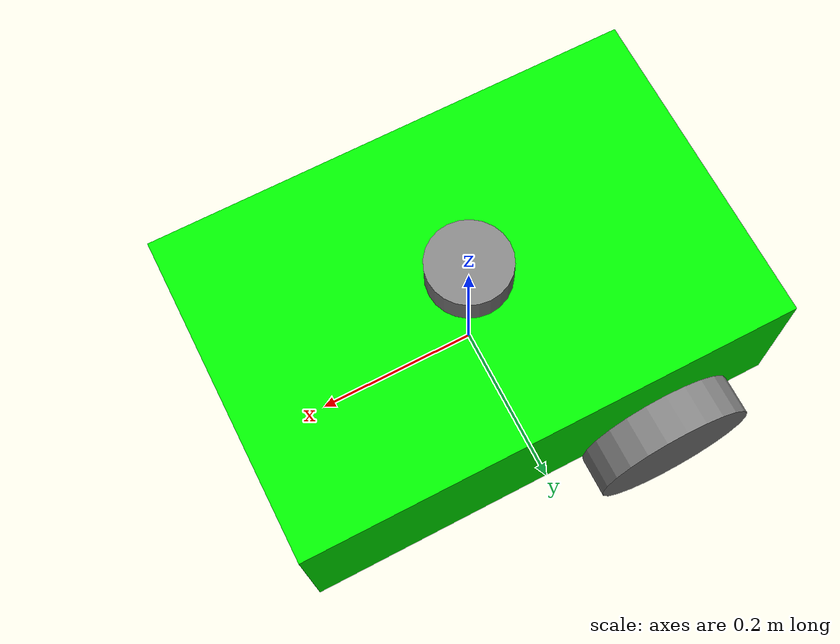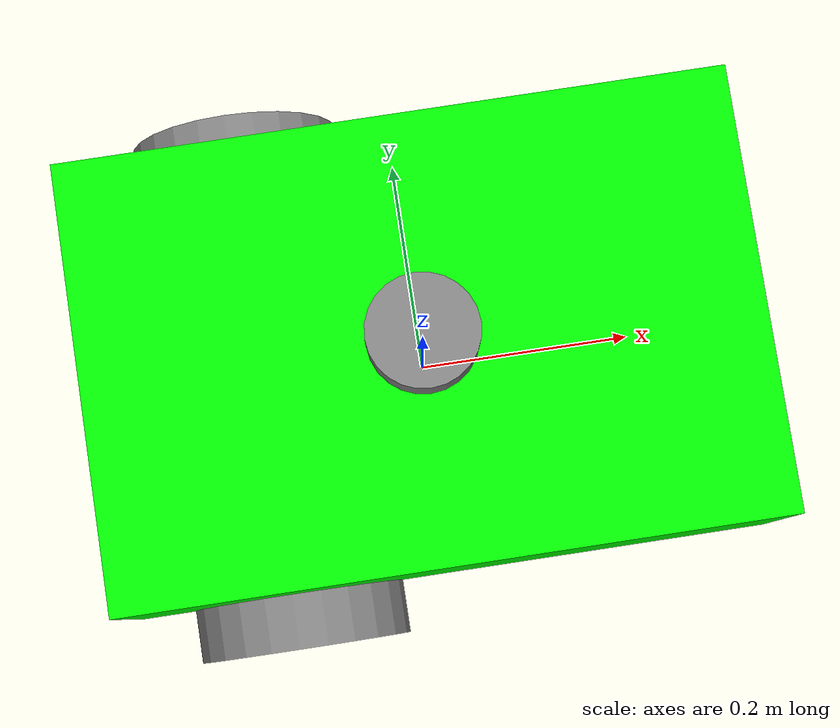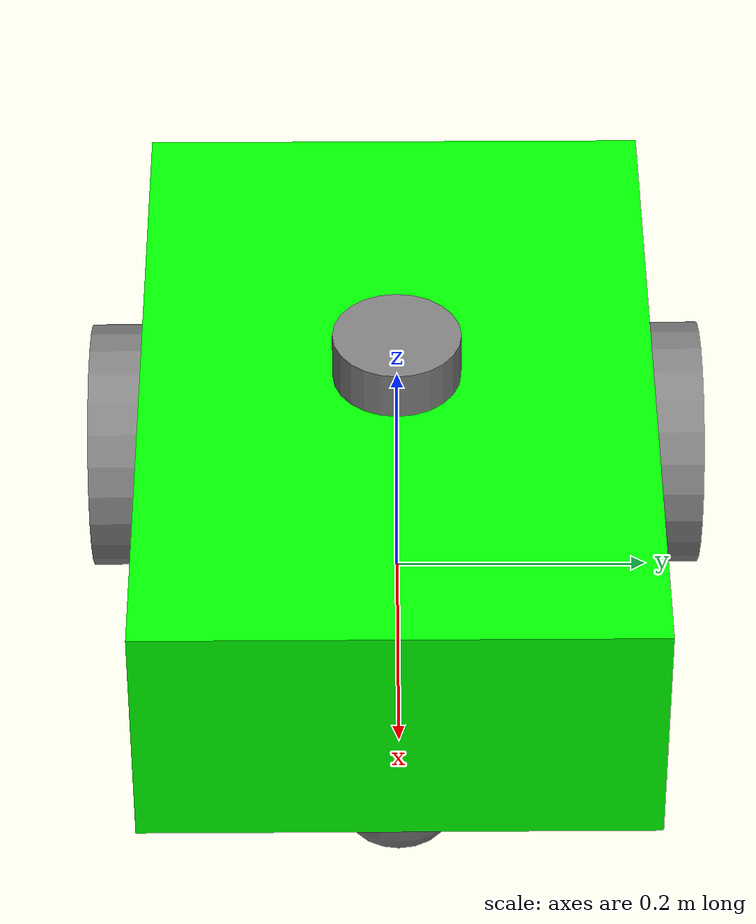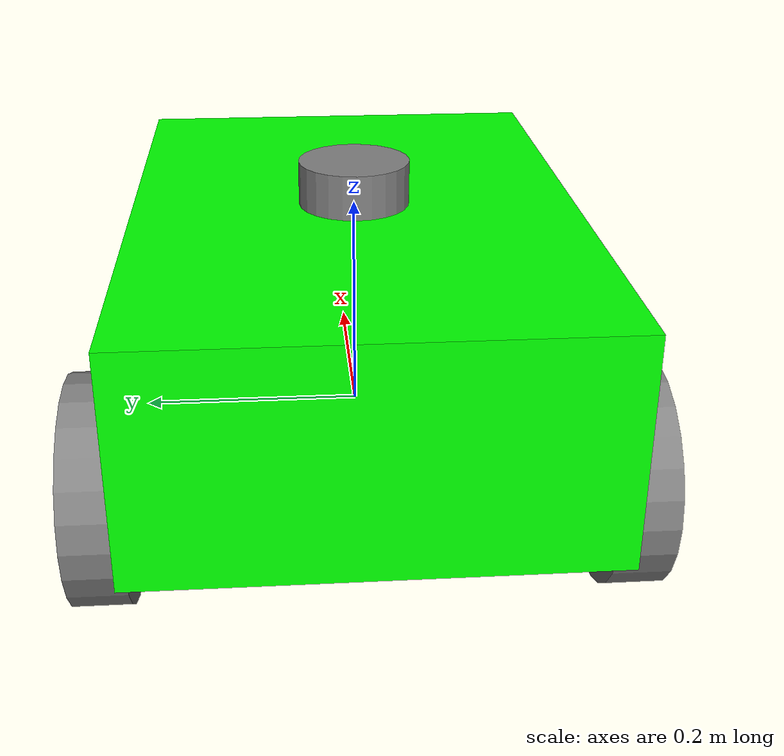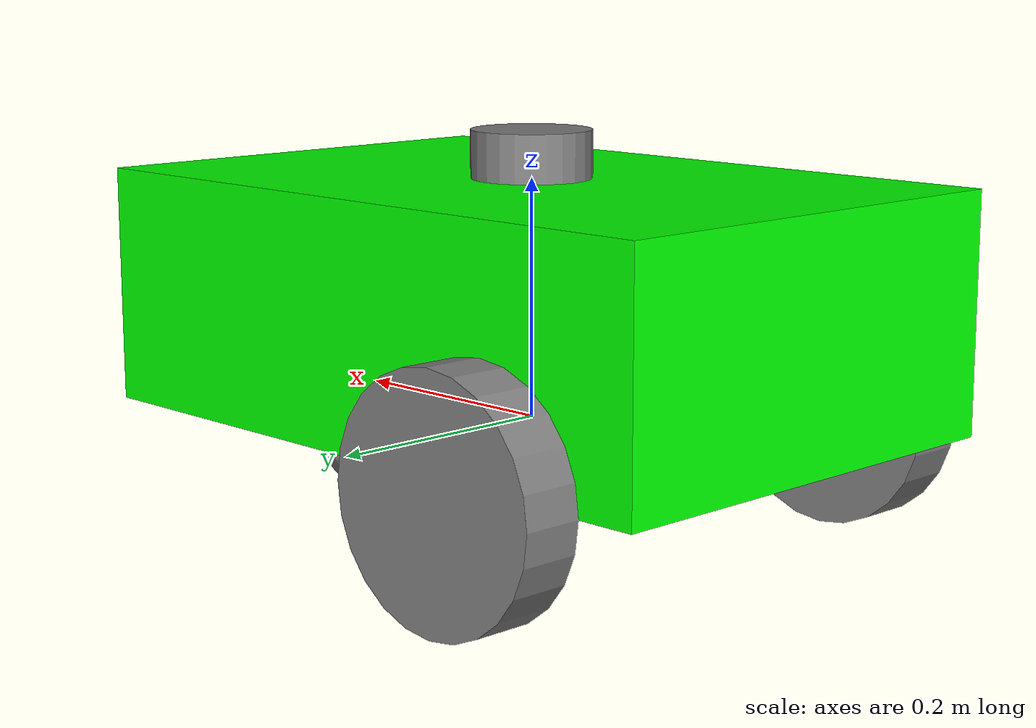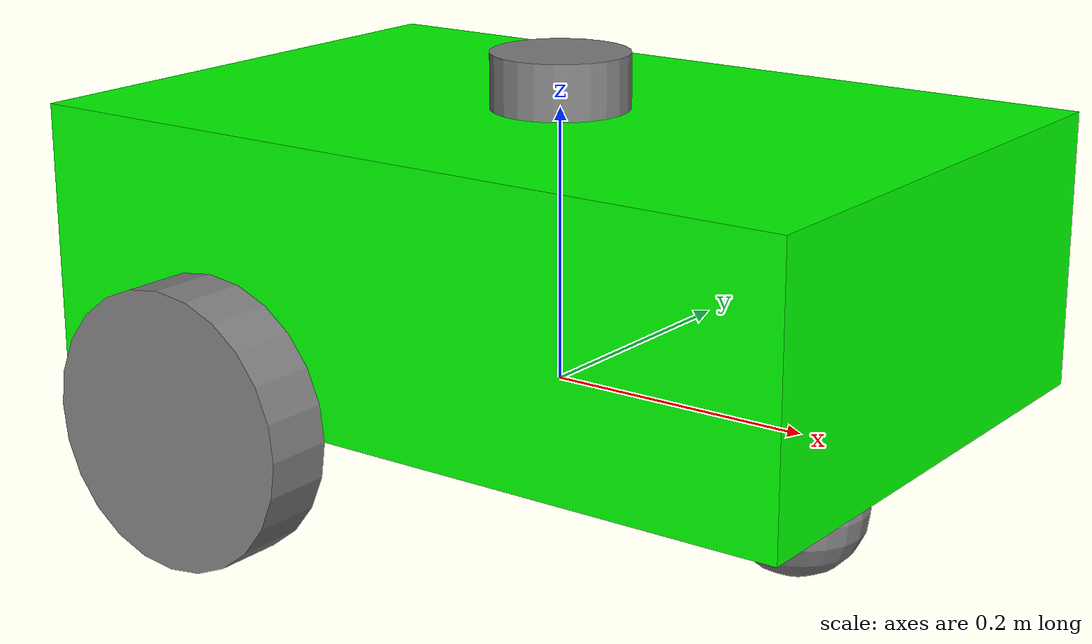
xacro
<?xml version="1.0"?>
<robot name="MineMapper" xmlns:xacro="http://www.ros.org.wiki/xacro">
    <xacro:arg name="robot_ns_arg" default="robot_default"/>

    <xacro:property name="robot_ns" value="$(arg robot_ns_arg)"/>
    <xacro:include filename="commom_properties.xacro"/>
    <xacro:include filename="mobile_base_gazebo.xacro"/>
    <xacro:include filename="dimensions.xacro"/>
    <xacro:include filename="lidar.xacro"/>

    <xacro:macro name="wheel_link" params="side color">
        <link name="${side}_wheel_link">
            <visual>
                <geometry>
                    <cylinder radius="0.1" length="${wheel_height}"/>
                </geometry>
                <origin xyz="0 0 0" rpy="0 0 0"/>
                <material name="${color}"/>
            </visual>

            <collision>
                <geometry>
                    <sphere radius="0.1"/>
                </geometry>
                <origin xyz="0 0 0" rpy="0 0 0"/>
            </collision>

            <xacro:cylinder_inertia m = "1.0" r="0.1" h="${wheel_height}"
                                    xyz="0 0 0" rpy="0 0 0"/>
        </link>
    </xacro:macro>

    <xacro:macro name="wheel_joint" params="side">
        <joint name="base_${side}_wheel_joint" type="continuous">
            <parent link="base_link"/>
            <child link="${side}_wheel_link"/>
            <xacro:if value="${side == 'left'}">
                <origin xyz="${-base_length/4} ${ base_width/2 + wheel_height/2} 0" rpy="${-pi/2} 0 0"/>
            </xacro:if>
            <xacro:if value="${side == 'right'}">
                <origin xyz="${-base_length/4} ${-base_width/2 - wheel_height/2} 0" rpy="${-pi/2} 0 0"/>
            </xacro:if>
            <axis xyz = "0 0 1" />
        </joint>
    </xacro:macro>

    <link name="base_footprint"/>

    <joint name="base_joint" type="fixed">
        <parent link="base_footprint"/>
        <child link="base_link"/>
        <origin xyz = "0 0 0" rpy = "0 0 0"/>
    </joint>

    <link name="base_link">
        <visual>
            <geometry>
                <box size=" ${base_length}
                            ${base_width}
                            ${base_height}"/>
            </geometry>
            <origin xyz="0 0 ${base_height/2}" rpy="0 0 0"/>
            <material name = "green"/>
        </visual>

        <collision>
            <geometry>
                <box size=" ${base_length}
                            ${base_width}
                            ${base_height}"/>
            </geometry>
            <origin xyz="0 0 ${base_height/2}" rpy="0 0 0"/>
        </collision>

        <xacro:box_inertia m = "1.0" l="${base_length}" w="${base_width}" h="${base_height}"
                                    xyz="0 0 ${base_height/2}" rpy="0 0 0"/>
    </link>

    <xacro:wheel_link side="right" color="grey"/>
    <xacro:wheel_link side="left" color="grey"/>

    <xacro:wheel_joint side="right"/>
    <xacro:wheel_joint side="left"/>

    <link name="caster_wheel">
        <visual>
            <geometry>
                <sphere radius="${wheel_radius/2}"/>
            </geometry>
            <origin xyz="0 0 0" rpy="0 0 0"/>
            <material name = "grey"/>
        </visual>

        <collision>
            <geometry>
                <sphere radius="${caster_wheel_radius}"/>
            </geometry>
            <origin xyz="0 0 0" rpy="0 0 0"/>
            <material name = "grey"/>
        </collision>

        <xacro:sphere_inertia   m="1.0" r="${caster_wheel_radius}"
                                xyz="0 0 0" rpy="0 0 0"/>
    </link>

    <joint name="base_caster_wheel_joint" type="fixed">
        <parent link="base_link"/>
        <child link="caster_wheel"/>
        <origin xyz = "${base_length/3} 0 ${-caster_wheel_radius}" rpy = "0 0 0"/>
    </joint>

</robot>

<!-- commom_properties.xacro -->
<robot xmlns:xacro="http://www.ros.org.wiki/xacro">

    <material name="green">
        <color rgba = "0 1 0 1"/>
    </material>

    <material name="grey">
        <color rgba = "0.5 0.5 0.5 1"/>
    </material>

     <xacro:macro name="box_inertia" params="m l w h xyz rpy">
        <inertial>
            <origin xyz="${xyz}" rpy="${rpy}"/>
            <mass value="${m}"/>
            <inertia    ixx="${(m/12.0)*(w*w+h*h)}" ixy="0.0" ixz="0.0"
                        iyy="${(m/12.0)*(l*l+h*h)}" iyz="0.0"
                        izz="${(m/12.0)*(l*l+w*w)}"/>
        </inertial>
    </xacro:macro>

    <xacro:macro name="cylinder_inertia" params="m r h xyz rpy">
        <inertial>
            <origin xyz="${xyz}" rpy="${rpy}"/>
            <mass value="${m}"/>
            <inertia ixx="${(m/12.0)*(3*r*r+h*h)}" ixy="0.0" ixz="0.0"
                    iyy="${(m/12.0)*(3*r*r+h*h)}" iyz="0.0"
                    izz="${(m/2.0)*(r*r)}"/>
        </inertial>
    </xacro:macro>

    <xacro:macro name="sphere_inertia" params="m r xyz rpy">
        <inertial>
            <origin xyz="${xyz}" rpy="${rpy}"/>
            <mass value="${m}"/>
            <inertia ixx="${(2.0*m/5.0)*(r*r)}" ixy="0.0" ixz="0.0"
                    iyy="${(2.0*m/5.0)*(r*r)}" iyz="0.0"
                    izz="${(2.0*m/5.0)*(r*r)}"/>
        </inertial>
        feafaeui
    </xacro:macro>

</robot>

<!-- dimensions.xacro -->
<robot xmlns:xacro="http://www.ros.org.wiki/xacro">

    <!-- PROPERTIES -->
    <xacro:property name="base_length" value="0.6"/>
    <xacro:property name="base_width" value="0.4"/>
    <xacro:property name="base_height" value="0.2"/>
    <xacro:property name="wheel_radius" value="0.1"/>
    <xacro:property name="wheel_height" value="0.05"/>
    <xacro:property name="caster_wheel_radius" value="${wheel_radius/2.0}"/>
    <xacro:property name="wheel_radius_separation" value="${wheel_height+base_width}"/>

</robot>

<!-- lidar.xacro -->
<robot xmlns:xacro="http://www.ros.org.wiki/xacro">
  <xacro:arg name="robot_ns" default=""/>

    <joint name="laser_joint" type="fixed">
        <parent link="base_link"/>
        <child link="laser_link"/>
        <origin xyz = "0 0 0.2" rpy="0 0 0"/>
    </joint>

    <link name="laser_link">
        <visual>
            <geometry>
                <cylinder radius="0.05" length="0.04"/>
            </geometry>
            <origin xyz="0 0 0.02" rpy="0 0 0"/>
            <material name="grey"/>
        </visual>

        <collision>
            <geometry>
                <cylinder radius="0.05" length="0.04"/>
            </geometry>
            <origin xyz="0 0 0.02" rpy="0 0 0"/>
        </collision>

        <xacro:cylinder_inertia m = "1.0" r="0.05" h="0.04"
                                xyz="0 0 0" rpy="0 0 0"/>
    </link>

    <gazebo reference="laser_link">
    <sensor name="lidar_sensor" type="gpu_lidar">
      <pose>0 0 0 0 0 0</pose>
      <topic>${robot_ns}/scan</topic>
      <update_rate>10</update_rate>
      <always_on>true</always_on>
      <visualize>true</visualize>

      <ray>
        <scan>
          <horizontal>
            <samples>360</samples>
            <resolution>1</resolution>
            <min_angle>-3.14</min_angle>
            <max_angle>3.14</max_angle>
          </horizontal>
          <vertical>
            <samples>1</samples>
            <resolution>1</resolution>
            <min_angle>0</min_angle>
            <max_angle>0</max_angle>
          </vertical>
        </scan>
        <range>
          <min>0.3</min>
          <max>12</max>
          <resolution>0.01</resolution>
        </range>
      </ray>

      <gz_frame_id>${robot_ns}/laser_link</gz_frame_id>
    </sensor>
  </gazebo>

</robot>
